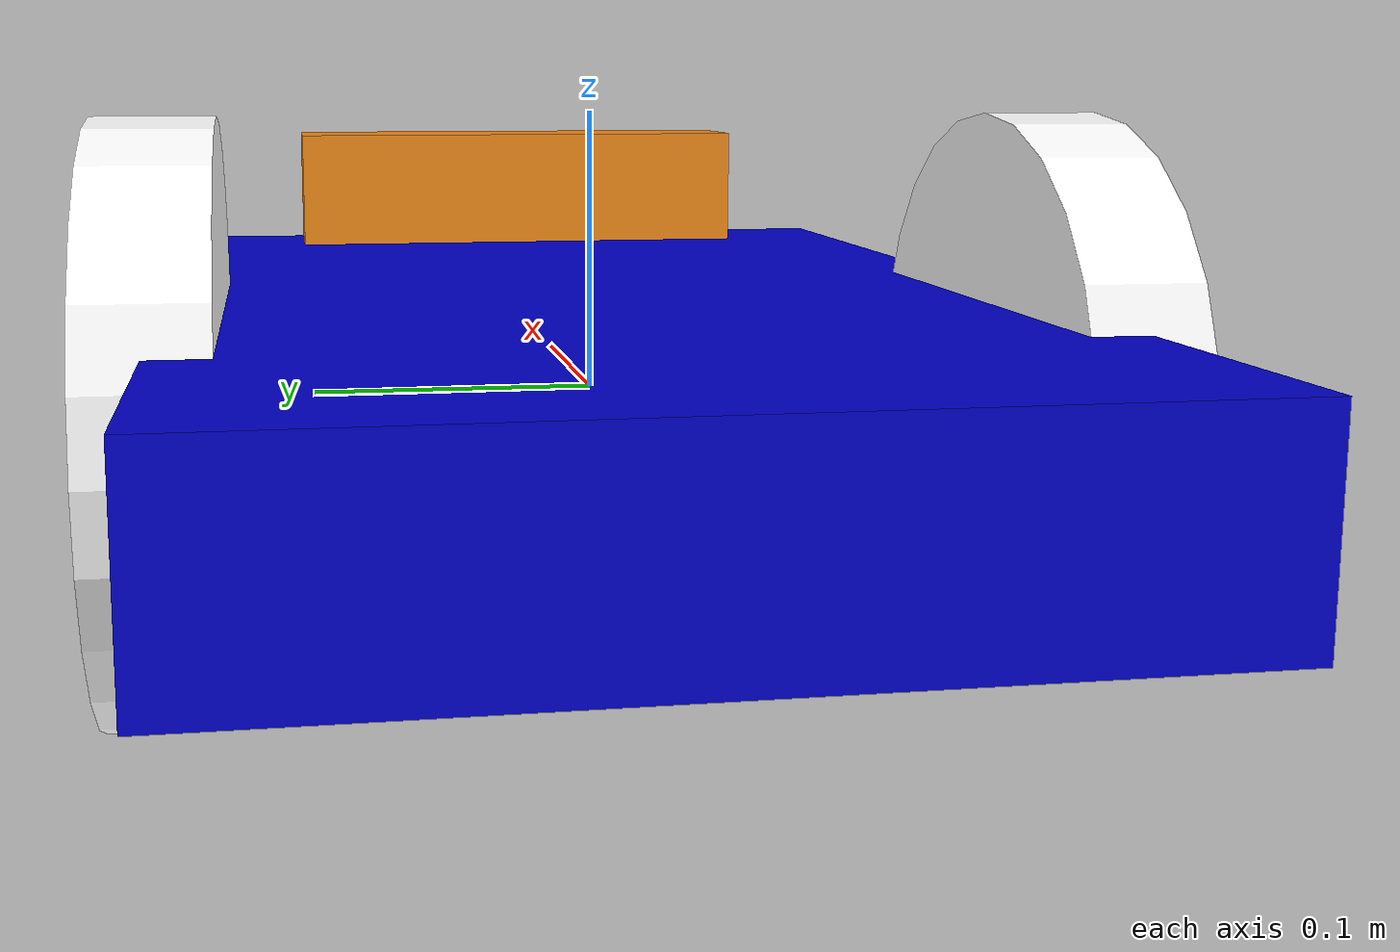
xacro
<?xml version="1.0"?>

<robot name="car" xmlns:xacro="http://ros.org/wiki/xacro" >

 <material name="blue">
 	<color rgba="0 0 0.8 1"/>
 </material>

 <material name="white">
	 <color rgba="1 1 1 1"/>
 </material>

 <xacro:property name="m" value="2" />
 <xacro:property name="l1" value="0.5" />
 <xacro:property name="b1" value="0.3" />
 <xacro:property name="h1" value="0.07" />

 <xacro:property name="r2" value="0.05" />

	<link name="chassis">
		<visual>
			<origin rpy="0 0 0" xyz="0 0 0"/>
			<geometry>
				<box size="${l1} ${b1} ${h1}"/>
			</geometry>
			<material name="blue"/>

		</visual>

		<collision name="collision_chassis">
			<geometry>
				<box size="${l1} ${b1} ${h1}"/>
			</geometry>
		</collision>

		<inertial>
			<mass value="${m}"/>
			<origin rpy="0 0 0" xyz="0 0 0"/>
			<inertia ixx="${m*h1*b1/12.0}" ixy="0" ixz="0" iyy="${m*l1*h1/12.0}" iyz="0" izz="${m*l1*b1/12.0}"/>
		</inertial>

		<!-- caster wheel-->
		<visual>
			<origin rpy="0 0 0" xyz="${l1/2-r2} 0 -${r2}"/>
			<geometry>
				<sphere radius="${r2}"/>
			</geometry>
		</visual>

		<collision name="caster_front_collision">
			<origin rpy="0 0 0" xyz="${l1/2-r2} 0 -${r2}"/>
			<geometry>
				<sphere radius="${r2}"/>
			</geometry>
			<surface>
				<friction>
					<ode>
						<mu>0</mu>
						<mu2>0</mu2>
						<slip1>1.0</slip1>
						<slip2>1.0</slip2>
					</ode>
				</friction>
			</surface>
		</collision>
	</link>

 <xacro:property name="l3" value="0.04" />
 <xacro:property name="r3" value="0.1" />
 <xacro:property name="m3" value="0.2" />

	<link name="right_wheel">
		<visual>
			<origin rpy="0 1.5707 1.5707" xyz="0 0 0"/>
			<geometry>
					<cylinder radius="${r3}" length="${l3}" />
			</geometry>
			<material name="white"/>
		</visual>

		<collision name="collision_right_wheel">
		<origin rpy="0 1.5707 1.5707" xyz="0 0 0"/>
			<geometry>
				<cylinder radius="${r3}" length="${l3}" />
			</geometry>
		</collision>

		<inertial>
			<mass value="${m3}"/>
			<origin rpy="0 1.5707 1.5707" xyz="0 0 0"/>
			<inertia ixx="${m3*((3*r3*r3)+(l3*l3))/12.0}" ixy="0" ixz="0" iyy="${m3*((3*r3*r3)+(l3*l3))/12.0}" iyz="0" izz="${(m3*r3*r3)/2.0}"/>
		</inertial>
	</link>

	<joint name="joint_right_wheel_chassis" type="continuous">
		<origin rpy="0 0 0" xyz="-0.05 -${b1/2} 0"/>
		<child link="right_wheel"/>
		<parent link="chassis"/>
		<axis xyz="0 1 0"/>
		<limit effort="10000" velocity="1000"/>
		<joint_properties damping="1.0" friction="1.0"/>
	</joint>

	<link name="left_wheel">
		<visual>
			<origin rpy="0 1.5707 1.5707" xyz="0 0 0"/>
			<geometry>
					<cylinder radius="${r3}" length="${l3}" />
			</geometry>
			<material name="white"/>
		</visual>

		<collision name="collision_left_wheel">
		<origin rpy="0 1.5707 1.5707" xyz="0 0 0"/>
			<geometry>
				<cylinder radius="${r3}" length="${l3}" />
			</geometry>
		</collision>

		<inertial>
			<mass value="${m3}"/>
			<origin rpy="0 1.5707 1.5707" xyz="0 0 0"/>
			<inertia ixx="${m3*((3*r3*r3)+(l3*l3))/12.0}" ixy="0" ixz="0" iyy="${m3*((3*r3*r3)+(l3*l3))/12.0}" iyz="0" izz="${(m3*r3*r3)/2.0}"/>
		</inertial>
	</link>

	<joint name="joint_left_wheel_chassis" type="continuous">
		<origin rpy="0 0 0" xyz="-0.05 ${b1/2} 0"/>
		<child link="left_wheel"/>
		<parent link="chassis"/>
		<axis xyz="0 1 0"/>
		<limit effort="10000" velocity="1000"/>
		<joint_properties damping="1.0" friction="1.0"/>
	</joint>

 <xacro:property name="mk" value="0.1" />
 <xacro:property name="lk" value="0.05" />
 <xacro:property name="bk" value="0.2" />
 <xacro:property name="hk" value="0.05" />

    <!-- Lidar -->
<link name="laser_link">
  <collision>
   <origin xyz="0 0 0" rpy="0 0 0"/>
   <geometry>
    <box size="0.1 0.1 0.1"/>
   </geometry>
  </collision>
  <visual>
   <origin xyz="0 0 0" rpy="0 0 0"/>
    <geometry>
     <box size="0.05 0.05 0.05"/>
    </geometry>
  </visual>
  <inertial>
    <mass value="1e-5" />
    <origin xyz="0 0 0" rpy="0 0 0"/>
    <inertia ixx="1e-6" ixy="0" ixz="0" iyy="1e-6" iyz="0" izz="1e-6" />
  </inertial>
</link>

<joint name="laser_joint" type="fixed">
  <axis xyz="0 1 0" />
  <origin xyz="0.300 0 0.001" rpy="0 0 0"/>
  <parent link="base_link"/>
  <child link="laser_link"/>
</joint>

	<!-- Kinect Sensor -->
	<link name="kinect">
		<visual>
			<origin rpy="0 0 0" xyz="0 0 0"/>
			<geometry>
					<box size="${lk} ${bk} ${hk}"/>
			</geometry>
		</visual>

		<collision name="collision_kinect">
			<geometry>
					<box size="${lk} ${bk} ${hk}"/>
			</geometry>
		</collision>

		<inertial>
			<mass value="${mk}"/>
			<origin rpy="0 0 0" xyz="0 0 0"/>
			<inertia ixx="${mk*hk*bk/12.0}" ixy="0" ixz="0" iyy="${mk*lk*hk/12.0}" iyz="0" izz="${mk*lk*bk/12.0}"/>
		</inertial>
	</link>

	<joint name="joint_kinect_chassis" type="fixed">
		<origin rpy="0 0 0" xyz="${l1/2-lk/2} 0 ${h1/2+hk/2}"/>
		<child link="kinect"/>
		<parent link="chassis"/>

	</joint>

	<link name="kinect_link" />

	<joint name="joint_kinect_link" type="fixed">
		<origin rpy="-1.5707 0 -1.5707" xyz="${l1/2} 0 ${h1/2+hk/2}"/>
		<child link="kinect_link"/>
		<parent link="chassis"/>

	</joint>

	<link name="base_link" />

	<joint name="joint_base_chassis" type="fixed">
	    <origin rpy="0 0 0" xyz="0 0 0"/>
	    <child link="base_link"/>
		<parent link="chassis"/>
	</joint>

<xacro:include filename="$(find criss_nav)/urdf/gazebo_plugins.urdf.xacro" />

</robot>
